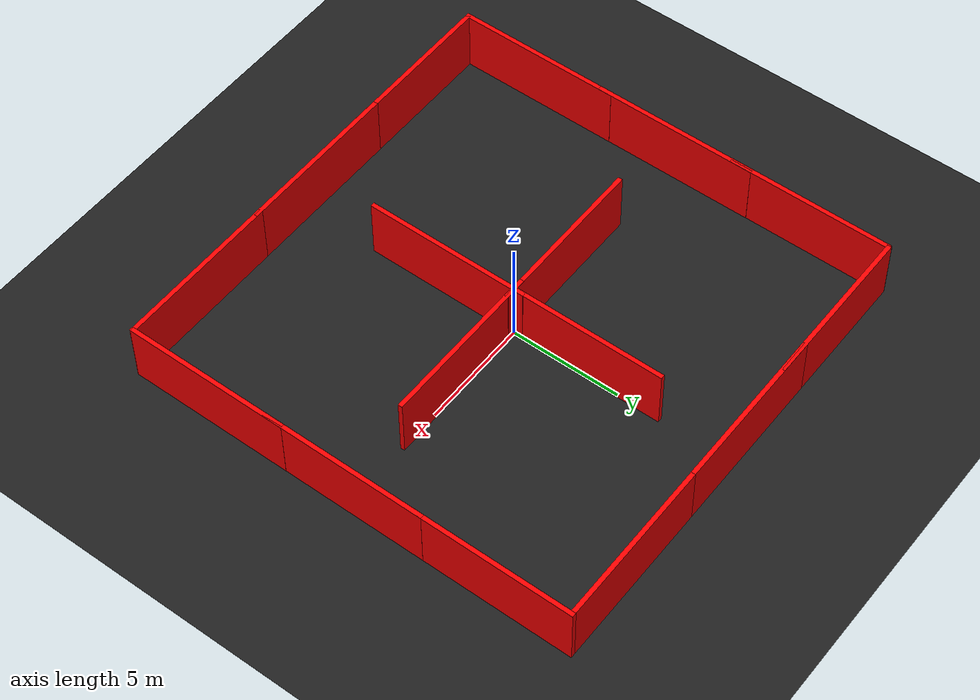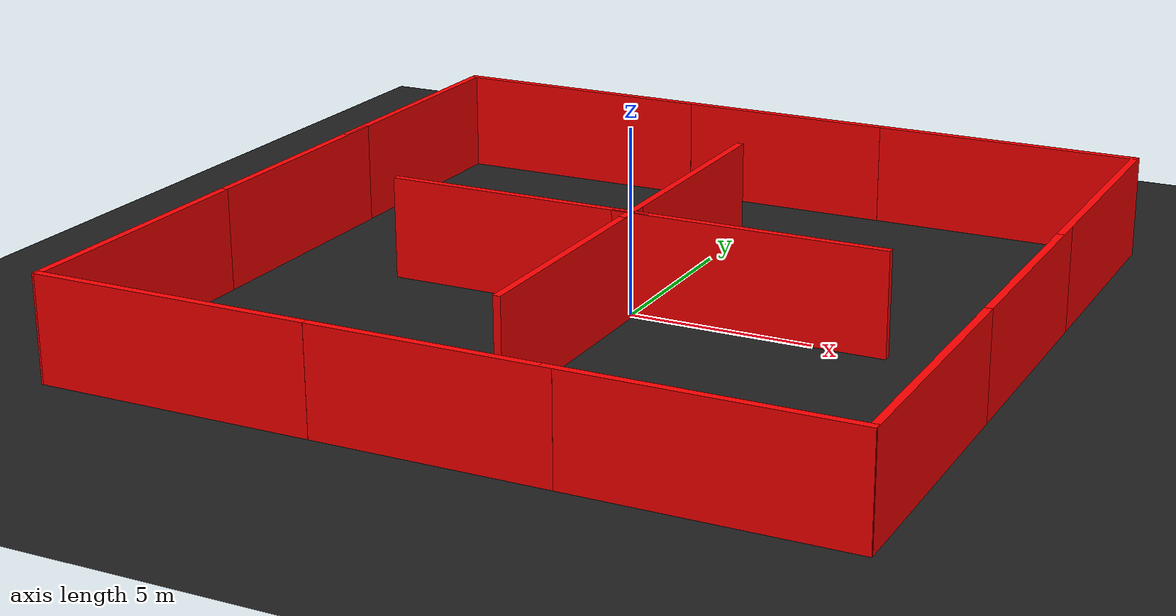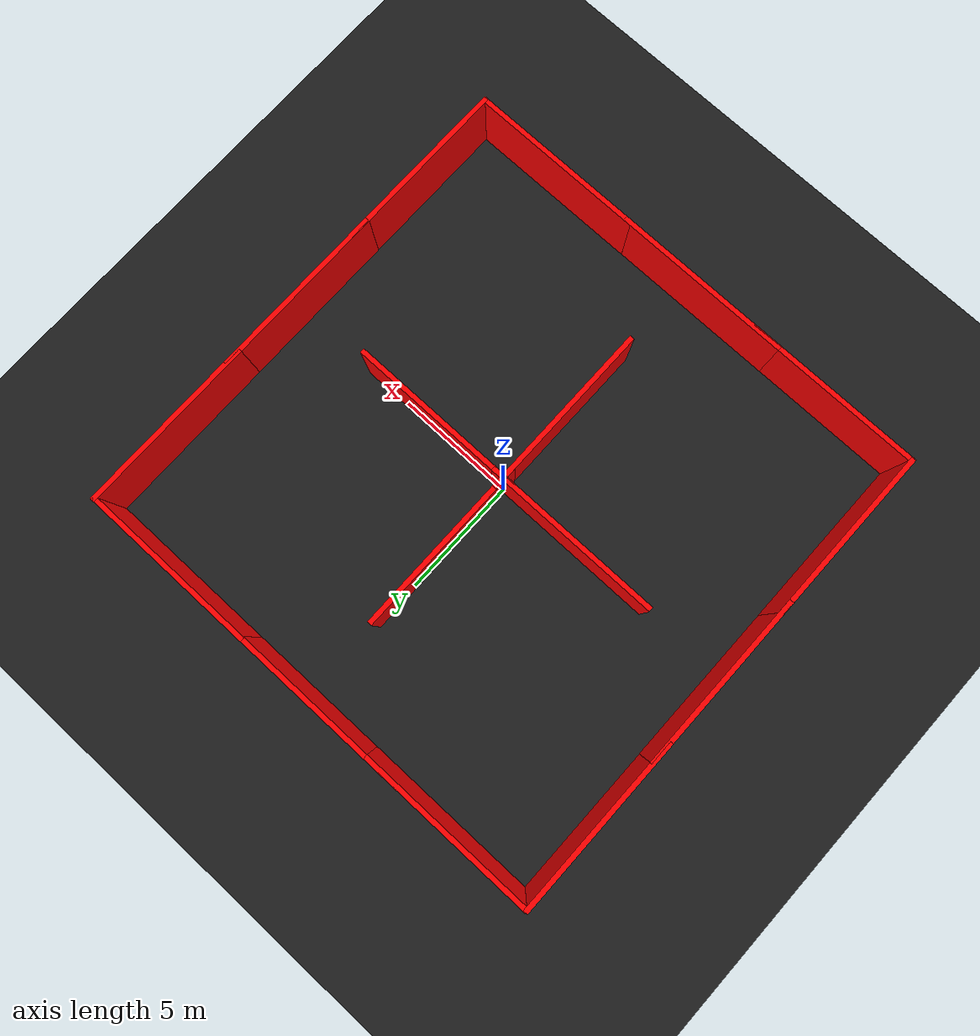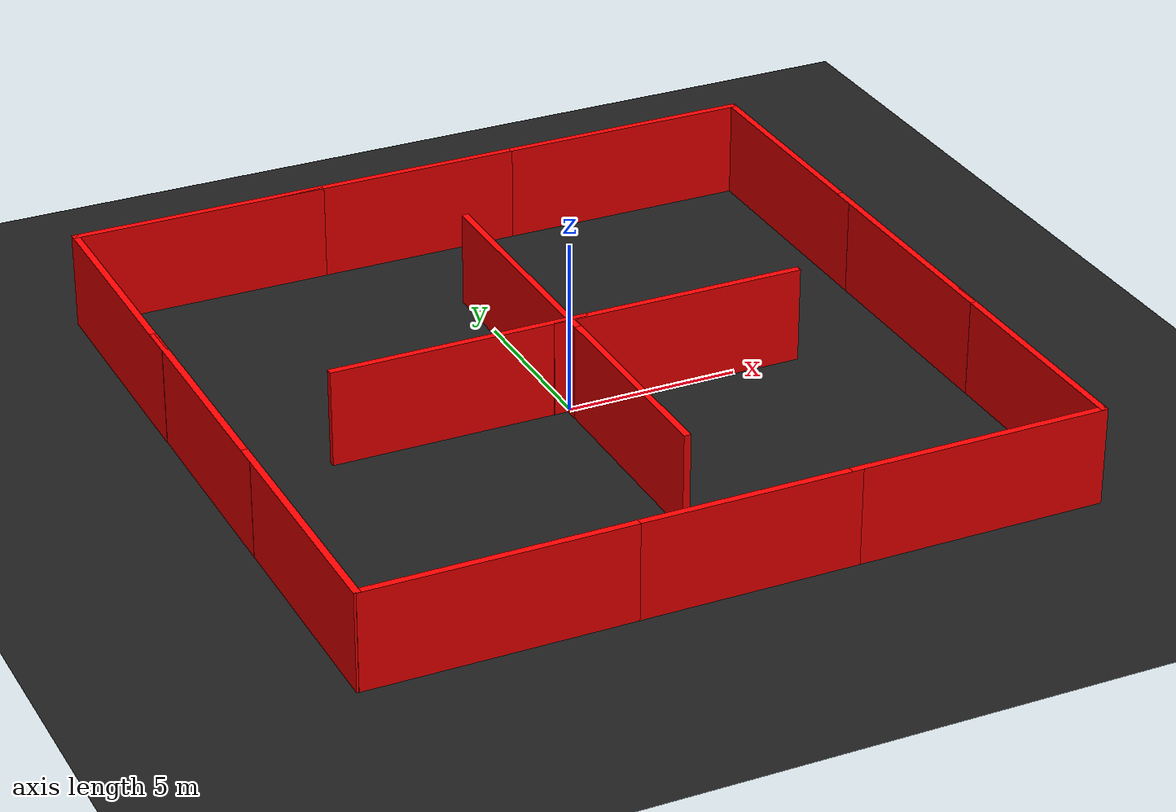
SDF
<sdf version="1.4">
 <world name="default">
  <light name="sun" type="directional">
   <pose>0 0 10 0 -0 0</pose>
   <diffuse>0.8 0.8 0.8 1</diffuse>
   <specular>0.2 0.2 0.2 1</specular>
   <attenuation>
    <range>1000</range>
    <constant>0.9</constant>
    <linear>0.01</linear>
    <quadratic>0.001</quadratic>
   </attenuation>
   <direction>-0.5 0.1 -0.9</direction>
  </light>
  <model name="ground_plane">
   <static>1</static>
   <link name="link">
    <collision name="collision">
     <geometry><plane><normal>0 0 1</normal><size>100 100</size></plane></geometry>
     <surface><friction><ode><mu>100</mu><mu2>50</mu2></ode></friction></surface>
    </collision>
    <visual name="visual">
     <cast_shadows>0</cast_shadows>
     <geometry><plane><normal>0 0 1</normal><size>100 100</size></plane></geometry>
     <material>
      <script><uri>file://media/materials/scripts/gazebo.material</uri><name>Gazebo/Black</name></script>
     </material>
    </visual>
    <velocity_decay><linear>0</linear><angular>0</angular></velocity_decay>
   </link>
  </model>
  <physics type="ode">
   <max_step_size>0.001</max_step_size>
   <real_time_factor>1</real_time_factor>
   <real_time_update_rate>1000</real_time_update_rate>
   <gravity>0 0 -9.8</gravity>
  </physics>
  <scene><ambient>0 0 0 1</ambient><background>0 0 0 1</background><shadows>0</shadows></scene>
  <model name="grey_wall">
   <static>1</static>
   <link name="link">
    <pose>0 0 1.4 0 -0 0</pose>
    <collision name="collision"><geometry><box><size>7.5 0.2 2.8</size></box></geometry></collision>
    <visual name="visual">
     <cast_shadows>0</cast_shadows>
     <geometry><box><size>7.5 0.2 2.8</size></box></geometry>
     <material>
      <ambient>1 0 0 1</ambient>
      <diffuse>1 0 0 1</diffuse>
      <specular>1 0 0 1</specular>
      <emissive>1 0 0 1</emissive>
     </material>
    </visual>
    <velocity_decay><linear>0</linear><angular>0</angular></velocity_decay>
   </link>
   <pose>-6.7561 10.3722 0 0 -0 0</pose>
  </model>
  <model name="grey_wall_0">
   <static>1</static>
   <link name="link">
    <pose>0 0 1.4 0 -0 0</pose>
    <collision name="collision"><geometry><box><size>7.5 0.2 2.8</size></box></geometry></collision>
    <visual name="visual">
     <cast_shadows>0</cast_shadows>
     <geometry><box><size>7.5 0.2 2.8</size></box></geometry>
     <material>
      <ambient>1 0 0 1</ambient>
      <diffuse>1 0 0 1</diffuse>
      <specular>1 0 0 1</specular>
      <emissive>1 0 0 1</emissive>
     </material>
    </visual>
    <velocity_decay><linear>0</linear><angular>0</angular></velocity_decay>
   </link>
   <pose>-0.796756 10.3765 0 0 -0 0</pose>
  </model>
  <model name="grey_wall_1">
   <static>1</static>
   <link name="link">
    <pose>0 0 1.4 0 -0 0</pose>
    <collision name="collision"><geometry><box><size>7.5 0.2 2.8</size></box></geometry></collision>
    <visual name="visual">
     <cast_shadows>0</cast_shadows>
     <geometry><box><size>7.5 0.2 2.8</size></box></geometry>
     <material>
      <ambient>1 0 0 1</ambient>
      <diffuse>1 0 0 1</diffuse>
      <specular>1 0 0 1</specular>
      <emissive>1 0 0 1</emissive>
     </material>
    </visual>
    <velocity_decay><linear>0</linear><angular>0</angular></velocity_decay>
   </link>
   <pose>6.63489 10.3804 0 0 -0 0</pose>
  </model>
  <model name="grey_wall_2">
   <static>1</static>
   <link name="link">
    <pose>0 0 1.4 0 -0 0</pose>
    <collision name="collision"><geometry><box><size>7.5 0.2 2.8</size></box></geometry></collision>
    <visual name="visual">
     <cast_shadows>0</cast_shadows>
     <geometry><box><size>7.5 0.2 2.8</size></box></geometry>
     <material>
      <ambient>1 0 0 1</ambient>
      <diffuse>1 0 0 1</diffuse>
      <specular>1 0 0 1</specular>
      <emissive>1 0 0 1</emissive>
     </material>
    </visual>
    <velocity_decay><linear>0</linear><angular>0</angular></velocity_decay>
   </link>
   <pose>-6.73975 -10.3185 0 0 -0 0</pose>
  </model>
  <model name="grey_wall_3">
   <static>1</static>
   <link name="link">
    <pose>0 0 1.4 0 -0 0</pose>
    <collision name="collision"><geometry><box><size>7.5 0.2 2.8</size></box></geometry></collision>
    <visual name="visual">
     <cast_shadows>0</cast_shadows>
     <geometry><box><size>7.5 0.2 2.8</size></box></geometry>
     <material>
      <ambient>1 0 0 1</ambient>
      <diffuse>1 0 0 1</diffuse>
      <specular>1 0 0 1</specular>
      <emissive>1 0 0 1</emissive>
     </material>
    </visual>
    <velocity_decay><linear>0</linear><angular>0</angular></velocity_decay>
   </link>
   <pose>-0.524266 -10.3159 0 0 -0 0</pose>
  </model>
  <model name="grey_wall_4">
   <static>1</static>
   <link name="link">
    <pose>0 0 1.4 0 -0 0</pose>
    <collision name="collision"><geometry><box><size>7.5 0.2 2.8</size></box></geometry></collision>
    <visual name="visual">
     <cast_shadows>0</cast_shadows>
     <geometry><box><size>7.5 0.2 2.8</size></box></geometry>
     <material>
      <ambient>1 0 0 1</ambient>
      <diffuse>1 0 0 1</diffuse>
      <specular>1 0 0 1</specular>
      <emissive>1 0 0 1</emissive>
     </material>
    </visual>
    <velocity_decay><linear>0</linear><angular>0</angular></velocity_decay>
   </link>
   <pose>6.6605 -10.3136 0 0 -0 0</pose>
  </model>
  <model name="grey_wall_5">
   <static>1</static>
   <link name="link">
    <pose>0 0 1.4 0 -0 0</pose>
    <collision name="collision"><geometry><box><size>7.5 0.2 2.8</size></box></geometry></collision>
    <visual name="visual">
     <cast_shadows>0</cast_shadows>
     <geometry><box><size>7.5 0.2 2.8</size></box></geometry>
     <material>
      <ambient>1 0 0 1</ambient>
      <diffuse>1 0 0 1</diffuse>
      <specular>1 0 0 1</specular>
      <emissive>1 0 0 1</emissive>
     </material>
    </visual>
    <velocity_decay><linear>0</linear><angular>0</angular></velocity_decay>
   </link>
   <pose>10.3255 -6.63645 0 0 0 -1.5708</pose>
  </model>
  <model name="grey_wall_6">
   <static>1</static>
   <link name="link">
    <pose>0 0 1.4 0 -0 0</pose>
    <collision name="collision"><geometry><box><size>7.5 0.2 2.8</size></box></geometry></collision>
    <visual name="visual">
     <cast_shadows>0</cast_shadows>
     <geometry><box><size>7.5 0.2 2.8</size></box></geometry>
     <material>
      <ambient>1 0 0 1</ambient>
      <diffuse>1 0 0 1</diffuse>
      <specular>1 0 0 1</specular>
      <emissive>1 0 0 1</emissive>
     </material>
    </visual>
    <velocity_decay><linear>0</linear><angular>0</angular></velocity_decay>
   </link>
   <pose>10.3224 -0.055181 0 0 -0 1.5708</pose>
  </model>
  <model name="grey_wall_8">
   <static>1</static>
   <link name="link">
    <pose>0 0 1.4 0 -0 0</pose>
    <collision name="collision"><geometry><box><size>7.5 0.2 2.8</size></box></geometry></collision>
    <visual name="visual">
     <cast_shadows>0</cast_shadows>
     <geometry><box><size>7.5 0.2 2.8</size></box></geometry>
     <material>
      <ambient>1 0 0 1</ambient>
      <diffuse>1 0 0 1</diffuse>
      <specular>1 0 0 1</specular>
      <emissive>1 0 0 1</emissive>
     </material>
    </visual>
    <velocity_decay><linear>0</linear><angular>0</angular></velocity_decay>
   </link>
   <pose>-10.4662 6.70249 0 0 -0 1.5708</pose>
  </model>
  <model name="grey_wall_9">
   <static>1</static>
   <link name="link">
    <pose>0 0 1.4 0 -0 0</pose>
    <collision name="collision"><geometry><box><size>7.5 0.2 2.8</size></box></geometry></collision>
    <visual name="visual">
     <cast_shadows>0</cast_shadows>
     <geometry><box><size>7.5 0.2 2.8</size></box></geometry>
     <material>
      <ambient>1 0 0 1</ambient>
      <diffuse>1 0 0 1</diffuse>
      <specular>1 0 0 1</specular>
      <emissive>1 0 0 1</emissive>
     </material>
    </visual>
    <velocity_decay><linear>0</linear><angular>0</angular></velocity_decay>
   </link>
   <pose>-10.4576 0.203964 0 0 0 -1.5708</pose>
  </model>
  <spherical_coordinates>
   <surface_model>EARTH_WGS84</surface_model>
   <latitude_deg>0</latitude_deg>
   <longitude_deg>0</longitude_deg>
   <elevation>0</elevation>
   <heading_deg>0</heading_deg>
  </spherical_coordinates>
  <model name="grey_wall_11">
   <static>1</static>
   <link name="link">
    <pose>0 0 1.4 0 -0 0</pose>
    <collision name="collision"><geometry><box><size>7.5 0.2 2.8</size></box></geometry></collision>
    <visual name="visual">
     <cast_shadows>0</cast_shadows>
     <geometry><box><size>7.5 0.2 2.8</size></box></geometry>
     <material>
      <ambient>1 0 0 1</ambient>
      <diffuse>1 0 0 1</diffuse>
      <specular>1 0 0 1</specular>
      <emissive>1 0 0 1</emissive>
     </material>
    </visual>
    <velocity_decay><linear>0</linear><angular>0</angular></velocity_decay>
   </link>
   <pose>-10.4526 -6.65634 0 0 0 -1.5708</pose>
  </model>
  <model name="grey_wall_13">
   <static>1</static>
   <link name="link">
    <pose>0 0 1.4 0 -0 0</pose>
    <collision name="collision"><geometry><box><size>7.5 0.2 2.8</size></box></geometry></collision>
    <visual name="visual">
     <cast_shadows>0</cast_shadows>
     <geometry><box><size>7.5 0.2 2.8</size></box></geometry>
     <material>
      <ambient>1 0 0 1</ambient>
      <diffuse>1 0 0 1</diffuse>
      <specular>1 0 0 1</specular>
      <emissive>1 0 0 1</emissive>
     </material>
    </visual>
    <velocity_decay><linear>0</linear><angular>0</angular></velocity_decay>
   </link>
   <pose>10.32 6.73319 0 0 -0 1.5708</pose>
  </model>
  <model name="grey_wall_14">
   <static>1</static>
   <link name="link">
    <pose>0 0 1.4 0 -0 0</pose>
    <collision name="collision"><geometry><box><size>7.5 0.2 2.8</size></box></geometry></collision>
    <visual name="visual">
     <cast_shadows>0</cast_shadows>
     <geometry><box><size>7.5 0.2 2.8</size></box></geometry>
     <material>
      <ambient>1 0 0 1</ambient>
      <diffuse>1 0 0 1</diffuse>
      <specular>1 0 0 1</specular>
      <emissive>1 0 0 1</emissive>
     </material>
    </visual>
    <velocity_decay><linear>0</linear><angular>0</angular></velocity_decay>
   </link>
   <pose>3.23934 -0.005016 0 0 -0 0</pose>
  </model>
  <model name="grey_wall_16">
   <static>1</static>
   <link name="link">
    <pose>0 0 1.4 0 -0 0</pose>
    <collision name="collision"><geometry><box><size>7.5 0.2 2.8</size></box></geometry></collision>
    <visual name="visual">
     <cast_shadows>0</cast_shadows>
     <geometry><box><size>7.5 0.2 2.8</size></box></geometry>
     <material>
      <ambient>1 0 0 1</ambient>
      <diffuse>1 0 0 1</diffuse>
      <specular>1 0 0 1</specular>
      <emissive>1 0 0 1</emissive>
     </material>
    </visual>
    <velocity_decay><linear>0</linear><angular>0</angular></velocity_decay>
   </link>
   <pose>0.004537 -3.26105 0 0 0 -1.5708</pose>
  </model>
  <model name="grey_wall_18">
   <static>1</static>
   <link name="link">
    <pose>0 0 1.4 0 -0 0</pose>
    <collision name="collision"><geometry><box><size>7.5 0.2 2.8</size></box></geometry></collision>
    <visual name="visual">
     <cast_shadows>0</cast_shadows>
     <geometry><box><size>7.5 0.2 2.8</size></box></geometry>
     <material>
      <ambient>1 0 0 1</ambient>
      <diffuse>1 0 0 1</diffuse>
      <specular>1 0 0 1</specular>
      <emissive>1 0 0 1</emissive>
     </material>
    </visual>
    <velocity_decay><linear>0</linear><angular>0</angular></velocity_decay>
   </link>
   <pose>-3.24325 0.001945 0 0 -0 0</pose>
  </model>
  <model name="grey_wall_20">
   <static>1</static>
   <link name="link">
    <pose>0 0 1.4 0 -0 0</pose>
    <collision name="collision"><geometry><box><size>7.5 0.2 2.8</size></box></geometry></collision>
    <visual name="visual">
     <cast_shadows>0</cast_shadows>
     <geometry><box><size>7.5 0.2 2.8</size></box></geometry>
     <material>
      <ambient>1 0 0 1</ambient>
      <diffuse>1 0 0 1</diffuse>
      <specular>1 0 0 1</specular>
      <emissive>1 0 0 1</emissive>
     </material>
    </visual>
    <velocity_decay><linear>0</linear><angular>0</angular></velocity_decay>
   </link>
   <pose>-0.004872 3.24759 0 0 0 -1.5708</pose>
  </model>
 </world>
</sdf>
